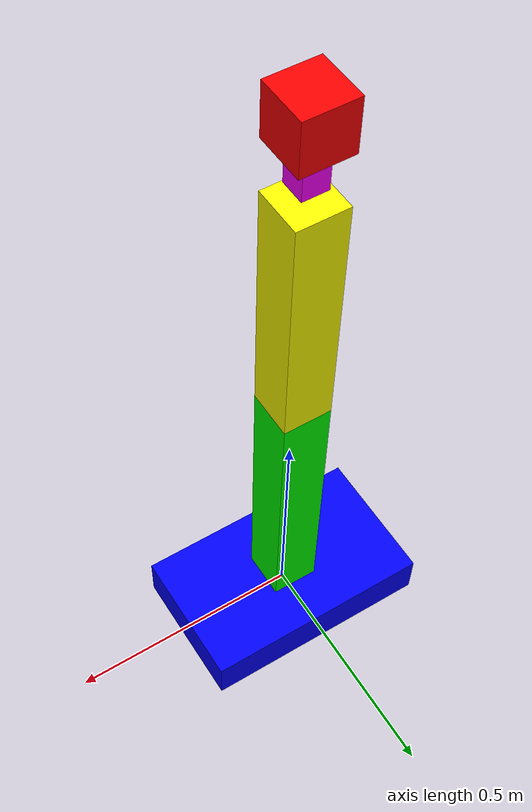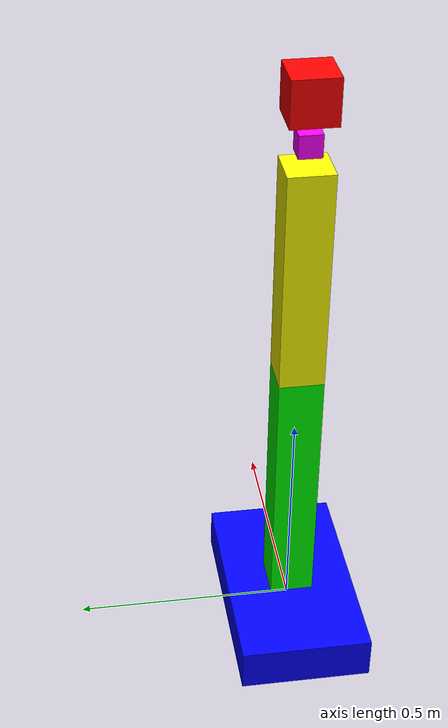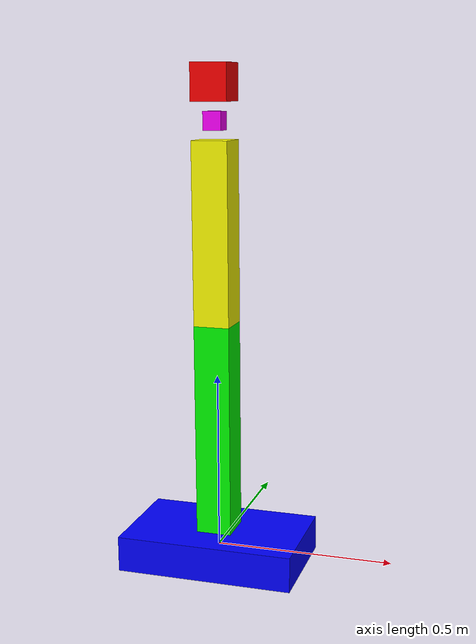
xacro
<?xml version="1.0"?>
<robot xmlns:xacro="http://www.ros.org/wiki/xacro" name="simple_robot">
    <xacro:arg name="initial_positions_file" default="initial_positions.yaml" />

    <!-- Import simple_robot urdf file -->
    <xacro:include filename="$(find arm_lab)/urdf/simple_robot_generated.urdf" />

    <!-- Import control_xacro -->
    <xacro:include filename="simple_robot.ros2_control.xacro" />

    <xacro:simple_robot_ros2_control name="FakeSystem" initial_positions_file="$(arg initial_positions_file)"/>

</robot>

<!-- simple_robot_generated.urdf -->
<!-- |    This document was autogenerated by xacro from /workspace/MoMa-ArmLab/ros2_ws/install/arm_lab/share/arm_lab/urdf/simple_robot.urdf.xacro | -->
<!-- |    EDITING THIS FILE BY HAND IS NOT RECOMMENDED                                 | -->
<robot name="simple_robot">
  <link name="base_link">
    <visual>
      <geometry>
        <box size="0.5 0.3 0.1"/>
      </geometry>
      <material name="base_link_material">
        <color rgba="0 0 1 1"/>
      </material>
    </visual>
    <collision>
      <geometry>
        <box size="0.5 0.3 0.1"/>
      </geometry>
    </collision>
    <inertial>
      <mass value="1.0"/>
      <inertia ixx="0.01" ixy="0.0" ixz="0.0" iyy="0.01" iyz="0.0" izz="0.01"/>
    </inertial>
  </link>
  <link name="arm_link_1">
    <visual>
      <geometry>
        <box size="0.1 0.1 0.6"/>
      </geometry>
      <material name="arm_link_1_material">
        <color rgba="0 1 0 1"/>
      </material>
    </visual>
    <collision>
      <geometry>
        <box size="0.1 0.1 0.6"/>
      </geometry>
    </collision>
    <inertial>
      <mass value="1.0"/>
      <inertia ixx="0.01" ixy="0.0" ixz="0.0" iyy="0.01" iyz="0.0" izz="0.01"/>
    </inertial>
  </link>
  <link name="arm_link_2">
    <visual>
      <geometry>
        <box size="0.1 0.1 0.5"/>
      </geometry>
      <material name="arm_link_2_material">
        <color rgba="1 1 0 1"/>
      </material>
    </visual>
    <collision>
      <geometry>
        <box size="0.1 0.1 0.5"/>
      </geometry>
    </collision>
    <inertial>
      <mass value="1.0"/>
      <inertia ixx="0.01" ixy="0.0" ixz="0.0" iyy="0.01" iyz="0.0" izz="0.01"/>
    </inertial>
  </link>
  <link name="camera_link">
    <visual>
      <geometry>
        <box size="0.1 0.1 0.1"/>
      </geometry>
      <material name="camera_link_material">
        <color rgba="1 0 0 1"/>
      </material>
    </visual>
    <collision>
      <geometry>
        <box size="0.1 0.1 0.1"/>
      </geometry>
    </collision>
    <inertial>
      <mass value="1.0"/>
      <inertia ixx="0.01" ixy="0.0" ixz="0.0" iyy="0.01" iyz="0.0" izz="0.01"/>
    </inertial>
  </link>
  <link name="tool0">
    <visual>
      <geometry>
        <box size="0.05 0.05 0.05"/>
      </geometry>
      <material name="tool0_material">
        <color rgba="1 0 1 1"/>
      </material>
    </visual>
    <collision>
      <geometry>
        <box size="0.05 0.05 0.05"/>
      </geometry>
    </collision>
    <inertial>
      <mass value="1.0"/>
      <inertia ixx="0.01" ixy="0.0" ixz="0.0" iyy="0.01" iyz="0.0" izz="0.01"/>
    </inertial>
  </link>
  <joint name="base_to_arm_joint" type="revolute">
    <parent link="base_link"/>
    <child link="arm_link_1"/>
    <origin rpy="0 0 0" xyz="0 0 0.35"/>
    <axis xyz="0 0 1"/>
    <limit effort="10" lower="-1.57" upper="1.57" velocity="1.0"/>
  </joint>
  <joint name="arm1_to_arm2_joint" type="revolute">
    <parent link="arm_link_1"/>
    <child link="arm_link_2"/>
    <origin rpy="0 0 0" xyz="0 0 0.55"/>
    <axis xyz="0 1 0"/>
    <limit effort="10" lower="-1.57" upper="1.57" velocity="1.0"/>
  </joint>
  <joint name="arm2_to_camera_joint" type="fixed">
    <parent link="arm_link_2"/>
    <child link="camera_link"/>
    <origin rpy="0 0 0" xyz="0 0 0.4"/>
  </joint>
  <joint name="arm2_to_tool0_joint" type="fixed">
    <parent link="arm_link_2"/>
    <child link="tool0"/>
    <origin rpy="0 0 0" xyz="0 0 0.3"/>
  </joint>
  <ros2_control name="GazeboSystem" type="system">
    <hardware>
      <plugin>gz_ros2_control/GazeboSimSystem</plugin>
    </hardware>
    <joint name="base_to_arm_joint">
      <command_interface name="position"/>
      <state_interface name="position"/>
      <state_interface name="velocity"/>
    </joint>
    <joint name="arm1_to_arm2_joint">
      <command_interface name="position"/>
      <state_interface name="position"/>
      <state_interface name="velocity"/>
    </joint>
  </ros2_control>
  <gazebo>
    <plugin filename="gz_ros2_control-system" name="gz_ros2_control::GazeboSimROS2ControlPlugin">
      <parameters>/home/akasha/MoMa-ArmLab/ros2_ws/install/arm_lab/share/arm_lab/config/arm_controllers.yaml</parameters>
    </plugin>
  </gazebo>
</robot>
